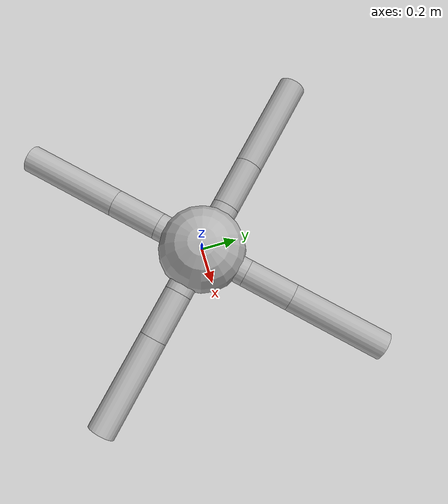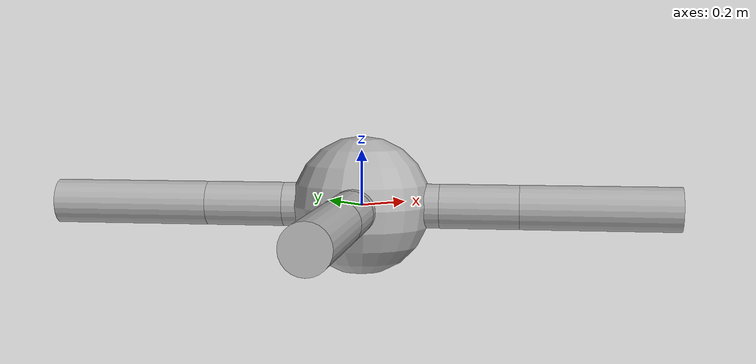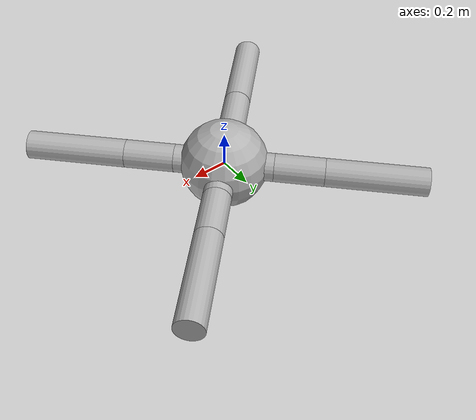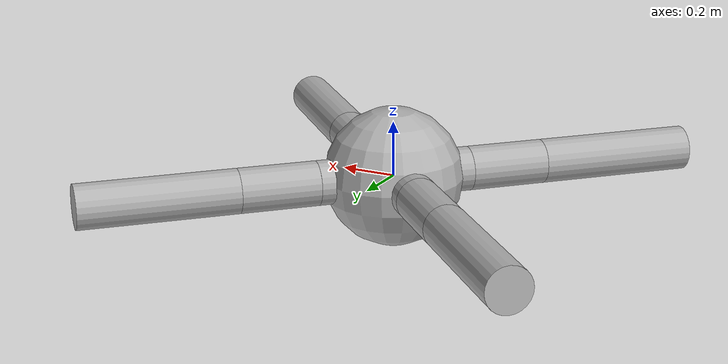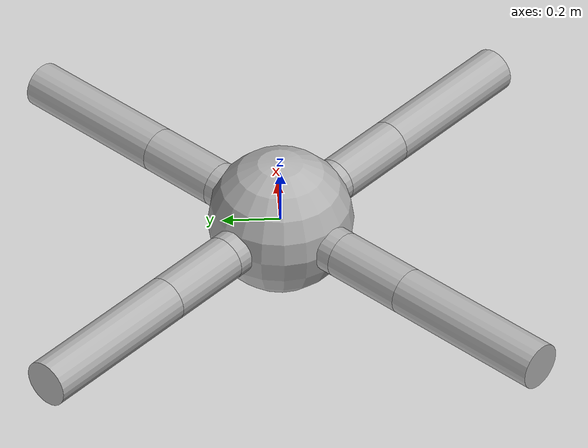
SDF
<?xml version="1.0"?>
<sdf version='1.11'>
  <model name='ant'>
    <link name='torso'>
      <inertial>
        <pose>0 2.294416879285882e-18 0 0 0 0</pose>
        <mass>96.776050999999967</mass>
        <inertia>
          <ixx>2.6675520009999998</ixx>
          <ixy>0</ixy>
          <ixz>0</ixz>
          <iyy>2.6675520009999998</iyy>
          <iyz>0</iyz>
          <izz>3.4315340010000011</izz>
        </inertia>
      </inertial>
      <collision name='torso_collision'>
        <pose>0 0 0 0 0 0</pose>
        <geometry>
          <sphere>
            <radius>0.25</radius>
          </sphere>
        </geometry>
      </collision>
      <visual name='torso_visual'>
        <pose>0 0 0 0 0 0</pose>
        <geometry>
          <sphere>
            <radius>0.25</radius>
          </sphere>
        </geometry>
              <material>
          <ambient>0.5 0.5 0.5 1</ambient>
          <diffuse>0.7 0.7 0.7 1</diffuse>
          <specular>0.1 0.1 0.1 1</specular>
        </material>
      </visual>
      <collision name='torso_fixed_joint_lump__back_leg_collision_1'>
        <pose>-0.10000000000000001 -0.10000000000000001 0 1.5707999999999998 -0.7854000000000001 -0.78540000000000021</pose>
        <geometry>
          <cylinder>
            <length>0.28283999999999998</length>
            <radius>0.080000000000000002</radius>
          </cylinder>
        </geometry>
      </collision>
      <visual name='torso_fixed_joint_lump__back_leg_1_visual'>
        <pose>-0.10000000000000001 -0.10000000000000001 0 1.5707999999999998 -0.7854000000000001 -0.78540000000000021</pose>
        <geometry>
          <cylinder>
            <length>0.28283999999999998</length>
            <radius>0.080000000000000002</radius>
          </cylinder>
        </geometry>
              <material>
          <ambient>0.5 0.5 0.5 1</ambient>
          <diffuse>0.7 0.7 0.7 1</diffuse>
          <specular>0.1 0.1 0.1 1</specular>
        </material>
      </visual>
      <collision name='torso_fixed_joint_lump__right_back_leg_collision_2'>
        <pose>0.10000000000000001 -0.10000000000000001 0 1.5707999999999998 0.7854000000000001 0.78540000000000021</pose>
        <geometry>
          <cylinder>
            <length>0.28283999999999998</length>
            <radius>0.080000000000000002</radius>
          </cylinder>
        </geometry>
      </collision>
      <visual name='torso_fixed_joint_lump__right_back_leg_2_visual'>
        <pose>0.10000000000000001 -0.10000000000000001 0 1.5707999999999998 0.7854000000000001 0.78540000000000021</pose>
        <geometry>
          <cylinder>
            <length>0.28283999999999998</length>
            <radius>0.080000000000000002</radius>
          </cylinder>
        </geometry>
              <material>
          <ambient>0.5 0.5 0.5 1</ambient>
          <diffuse>0.7 0.7 0.7 1</diffuse>
          <specular>0.1 0.1 0.1 1</specular>
        </material>
      </visual>
      <collision name='torso_fixed_joint_lump__front_left_leg_collision_3'>
        <pose>0.10000000000000001 0.10000000000000001 0 -1.5707999999999998 0.7854000000000001 -0.78540000000000021</pose>
        <geometry>
          <cylinder>
            <length>0.28283999999999998</length>
            <radius>0.080000000000000002</radius>
          </cylinder>
        </geometry>
      </collision>
      <visual name='torso_fixed_joint_lump__front_left_leg_3_visual'>
        <pose>0.10000000000000001 0.10000000000000001 0 -1.5707999999999998 0.7854000000000001 -0.78540000000000021</pose>
        <geometry>
          <cylinder>
            <length>0.28283999999999998</length>
            <radius>0.080000000000000002</radius>
          </cylinder>
        </geometry>
              <material>
          <ambient>0.5 0.5 0.5 1</ambient>
          <diffuse>0.7 0.7 0.7 1</diffuse>
          <specular>0.1 0.1 0.1 1</specular>
        </material>
      </visual>
      <collision name='torso_fixed_joint_lump__front_right_leg_collision_4'>
        <pose>-0.10000000000000001 0.10000000000000001 0 -1.5707999999999998 -0.7854000000000001 0.78540000000000021</pose>
        <geometry>
          <cylinder>
            <length>0.28283999999999998</length>
            <radius>0.080000000000000002</radius>
          </cylinder>
        </geometry>
      </collision>
      <visual name='torso_fixed_joint_lump__front_right_leg_4_visual'>
        <pose>-0.10000000000000001 0.10000000000000001 0 -1.5707999999999998 -0.7854000000000001 0.78540000000000021</pose>
        <geometry>
          <cylinder>
            <length>0.28283999999999998</length>
            <radius>0.080000000000000002</radius>
          </cylinder>
        </geometry>
              <material>
          <ambient>0.5 0.5 0.5 1</ambient>
          <diffuse>0.7 0.7 0.7 1</diffuse>
          <specular>0.1 0.1 0.1 1</specular>
        </material>
      </visual>
    </link>
    <joint name='hip_3' type='revolute'>
      <pose relative_to='torso'>-0.20000000000000001 -0.20000000000000001 0 0 0 0</pose>
      <parent>torso</parent>
      <child>link1_13</child>
      <axis>
        <xyz>0 0 1</xyz>
        <limit>
          <lower>-0.52359999999999995</lower>
          <upper>0.52359999999999995</upper>
          <effort>0</effort>
          <velocity>0</velocity>
        </limit>
        <dynamics>
          <damping>1</damping>
          <friction>0.0001</friction>
          <spring_reference>0</spring_reference>
          <spring_stiffness>0</spring_stiffness>
        </dynamics>
      </axis>
    </joint>
    <link name='link1_13'>
      <pose relative_to='hip_3'>0 0 0 0 0 0</pose>
      <inertial>
        <pose>-0.099999987231137247 -0.099999987231137247 0 0 0 0</pose>
        <mass>7.8315510000000002</mass>
        <inertia>
          <ixx>0.17951001099999869</ixx>
          <ixy>-9.9999987041021754e-09</ixy>
          <ixz>0</ixz>
          <iyy>0.17951001099999869</iyy>
          <iyz>0</iyz>
          <izz>0.29219002099999752</izz>
        </inertia>
      </inertial>
      <collision name='link1_13_fixed_joint_lump__aux_3_collision'>
        <pose>-0.10000000000000001 -0.10000000000000001 0 1.5707999999999998 -0.7854000000000001 -0.78540000000000021</pose>
        <geometry>
          <cylinder>
            <length>0.28283999999999998</length>
            <radius>0.080000000000000002</radius>
          </cylinder>
        </geometry>
      </collision>
      <visual name='link1_13_fixed_joint_lump__aux_3_visual'>
        <pose>-0.10000000000000001 -0.10000000000000001 0 1.5707999999999998 -0.7854000000000001 -0.78540000000000021</pose>
        <geometry>
          <cylinder>
            <length>0.28283999999999998</length>
            <radius>0.080000000000000002</radius>
          </cylinder>
        </geometry>
              <material>
          <ambient>0.5 0.5 0.5 1</ambient>
          <diffuse>0.7 0.7 0.7 1</diffuse>
          <specular>0.1 0.1 0.1 1</specular>
        </material>
      </visual>
    </link>
    <joint name='ankle_3' type='revolute'>
      <pose relative_to='link1_13'>-0.20000000000000001 -0.20000000000000001 0 0 0 0</pose>
      <parent>link1_13</parent>
      <child>link1_15</child>
      <axis>
        <xyz>-1 1 0</xyz>
        <limit>
          <lower>-1.22173</lower>
          <upper>-0.52359999999999995</upper>
          <effort>0</effort>
          <velocity>0</velocity>
        </limit>
        <dynamics>
          <damping>1</damping>
          <friction>0.0001</friction>
          <spring_reference>0</spring_reference>
          <spring_stiffness>0</spring_stiffness>
        </dynamics>
      </axis>
    </joint>
    <link name='link1_15'>
      <pose relative_to='ankle_3'>0 0 0 0 0 0</pose>
      <inertial>
        <pose>-0.19999998520539461 -0.19999998520539461 0 0 0 0</pose>
        <mass>13.518440999999999</mass>
        <inertia>
          <ixx>0.5681300409999972</ixx>
          <ixy>-3.9999997092365902e-08</ixy>
          <ixz>0</ixz>
          <iyy>0.5681300409999972</iyy>
          <iyz>0</iyz>
          <izz>1.020900080999994</izz>
        </inertia>
      </inertial>
      <collision name='link1_15_fixed_joint_lump__link1_14_collision'>
        <pose>-0.20000000000000001 -0.20000000000000001 0 1.5707999999999998 -0.7854000000000001 -0.78540000000000021</pose>
        <geometry>
          <cylinder>
            <length>0.56569000000000003</length>
            <radius>0.080000000000000002</radius>
          </cylinder>
        </geometry>
      </collision>
      <visual name='link1_15_fixed_joint_lump__link1_14_visual'>
        <pose>-0.20000000000000001 -0.20000000000000001 0 1.5707999999999998 -0.7854000000000001 -0.78540000000000021</pose>
        <geometry>
          <cylinder>
            <length>0.56569000000000003</length>
            <radius>0.080000000000000002</radius>
          </cylinder>
        </geometry>
              <material>
          <ambient>0.5 0.5 0.5 1</ambient>
          <diffuse>0.7 0.7 0.7 1</diffuse>
          <specular>0.1 0.1 0.1 1</specular>
        </material>
      </visual>
    </link>
    <joint name='hip_4' type='revolute'>
      <pose relative_to='torso'>0.20000000000000001 -0.20000000000000001 0 0 0 0</pose>
      <parent>torso</parent>
      <child>link1_18</child>
      <axis>
        <xyz>0 0 1</xyz>
        <limit>
          <lower>-0.52359999999999995</lower>
          <upper>0.52359999999999995</upper>
          <effort>0</effort>
          <velocity>0</velocity>
        </limit>
        <dynamics>
          <damping>1</damping>
          <friction>0.0001</friction>
          <spring_reference>0</spring_reference>
          <spring_stiffness>0</spring_stiffness>
        </dynamics>
      </axis>
    </joint>
    <link name='link1_18'>
      <pose relative_to='hip_4'>0 0 0 0 0 0</pose>
      <inertial>
        <pose>0.099999987231137247 -0.099999987231137247 0 0 0 0</pose>
        <mass>7.8315510000000002</mass>
        <inertia>
          <ixx>0.17951001099999869</ixx>
          <ixy>9.9999987041021754e-09</ixy>
          <ixz>0</ixz>
          <iyy>0.17951001099999869</iyy>
          <iyz>0</iyz>
          <izz>0.29219002099999752</izz>
        </inertia>
      </inertial>
      <collision name='link1_18_fixed_joint_lump__aux_4_collision'>
        <pose>0.10000000000000001 -0.10000000000000001 0 1.5707999999999998 0.7854000000000001 0.78540000000000021</pose>
        <geometry>
          <cylinder>
            <length>0.28283999999999998</length>
            <radius>0.080000000000000002</radius>
          </cylinder>
        </geometry>
      </collision>
      <visual name='link1_18_fixed_joint_lump__aux_4_visual'>
        <pose>0.10000000000000001 -0.10000000000000001 0 1.5707999999999998 0.7854000000000001 0.78540000000000021</pose>
        <geometry>
          <cylinder>
            <length>0.28283999999999998</length>
            <radius>0.080000000000000002</radius>
          </cylinder>
        </geometry>
              <material>
          <ambient>0.5 0.5 0.5 1</ambient>
          <diffuse>0.7 0.7 0.7 1</diffuse>
          <specular>0.1 0.1 0.1 1</specular>
        </material>
      </visual>
    </link>
    <joint name='ankle_4' type='revolute'>
      <pose relative_to='link1_18'>0.20000000000000001 -0.20000000000000001 0 0 0 0</pose>
      <parent>link1_18</parent>
      <child>link1_20</child>
      <axis>
        <xyz>1 1 0</xyz>
        <limit>
          <lower>0.52359999999999995</lower>
          <upper>1.22173</upper>
          <effort>0</effort>
          <velocity>0</velocity>
        </limit>
        <dynamics>
          <damping>1</damping>
          <friction>0.0001</friction>
          <spring_reference>0</spring_reference>
          <spring_stiffness>0</spring_stiffness>
        </dynamics>
      </axis>
    </joint>
    <link name='link1_20'>
      <pose relative_to='ankle_4'>0 0 0 0 0 0</pose>
      <inertial>
        <pose>0.19999998520539461 -0.19999998520539461 0 0 0 0</pose>
        <mass>13.518440999999999</mass>
        <inertia>
          <ixx>0.5681300409999972</ixx>
          <ixy>3.9999997092365902e-08</ixy>
          <ixz>0</ixz>
          <iyy>0.5681300409999972</iyy>
          <iyz>0</iyz>
          <izz>1.020900080999994</izz>
        </inertia>
      </inertial>
      <collision name='link1_20_fixed_joint_lump__link1_19_collision'>
        <pose>0.20000000000000001 -0.20000000000000001 0 1.5707999999999998 0.7854000000000001 0.78540000000000021</pose>
        <geometry>
          <cylinder>
            <length>0.56569000000000003</length>
            <radius>0.080000000000000002</radius>
          </cylinder>
        </geometry>
      </collision>
      <visual name='link1_20_fixed_joint_lump__link1_19_visual'>
        <pose>0.20000000000000001 -0.20000000000000001 0 1.5707999999999998 0.7854000000000001 0.78540000000000021</pose>
        <geometry>
          <cylinder>
            <length>0.56569000000000003</length>
            <radius>0.080000000000000002</radius>
          </cylinder>
        </geometry>
              <material>
          <ambient>0.5 0.5 0.5 1</ambient>
          <diffuse>0.7 0.7 0.7 1</diffuse>
          <specular>0.1 0.1 0.1 1</specular>
        </material>
      </visual>
    </link>
    <joint name='hip_1' type='revolute'>
      <pose relative_to='torso'>0.20000000000000001 0.20000000000000001 0 0 0 0</pose>
      <parent>torso</parent>
      <child>link1_3</child>
      <axis>
        <xyz>0 0 1</xyz>
        <limit>
          <lower>-0.52359999999999995</lower>
          <upper>0.52359999999999995</upper>
          <effort>0</effort>
          <velocity>0</velocity>
        </limit>
        <dynamics>
          <damping>1</damping>
          <friction>0.0001</friction>
          <spring_reference>0</spring_reference>
          <spring_stiffness>0</spring_stiffness>
        </dynamics>
      </axis>
    </joint>
    <link name='link1_3'>
      <pose relative_to='hip_1'>0 0 0 0 0 0</pose>
      <inertial>
        <pose>0.099999987231137247 0.099999987231137247 0 0 0 0</pose>
        <mass>7.8315510000000002</mass>
        <inertia>
          <ixx>0.17951001099999869</ixx>
          <ixy>-9.9999987041021754e-09</ixy>
          <ixz>0</ixz>
          <iyy>0.17951001099999869</iyy>
          <iyz>0</iyz>
          <izz>0.29219002099999752</izz>
        </inertia>
      </inertial>
      <collision name='link1_3_fixed_joint_lump__aux_1_collision'>
        <pose>0.10000000000000001 0.10000000000000001 0 -1.5707999999999998 0.7854000000000001 -0.78540000000000021</pose>
        <geometry>
          <cylinder>
            <length>0.28283999999999998</length>
            <radius>0.080000000000000002</radius>
          </cylinder>
        </geometry>
      </collision>
      <visual name='link1_3_fixed_joint_lump__aux_1_visual'>
        <pose>0.10000000000000001 0.10000000000000001 0 -1.5707999999999998 0.7854000000000001 -0.78540000000000021</pose>
        <geometry>
          <cylinder>
            <length>0.28283999999999998</length>
            <radius>0.080000000000000002</radius>
          </cylinder>
        </geometry>
              <material>
          <ambient>0.5 0.5 0.5 1</ambient>
          <diffuse>0.7 0.7 0.7 1</diffuse>
          <specular>0.1 0.1 0.1 1</specular>
        </material>
      </visual>
    </link>
    <joint name='ankle_1' type='revolute'>
      <pose relative_to='link1_3'>0.20000000000000001 0.20000000000000001 0 0 0 0</pose>
      <parent>link1_3</parent>
      <child>link1_5</child>
      <axis>
        <xyz>-1 1 0</xyz>
        <limit>
          <lower>0.52359999999999995</lower>
          <upper>1.22173</upper>
          <effort>0</effort>
          <velocity>0</velocity>
        </limit>
        <dynamics>
          <damping>1</damping>
          <friction>0.0001</friction>
          <spring_reference>0</spring_reference>
          <spring_stiffness>0</spring_stiffness>
        </dynamics>
      </axis>
    </joint>
    <link name='link1_5'>
      <pose relative_to='ankle_1'>0 0 0 0 0 0</pose>
      <inertial>
        <pose>0.19999998520539461 0.19999998520539461 0 0 0 0</pose>
        <mass>13.518440999999999</mass>
        <inertia>
          <ixx>0.5681300409999972</ixx>
          <ixy>-3.9999997092365902e-08</ixy>
          <ixz>0</ixz>
          <iyy>0.5681300409999972</iyy>
          <iyz>0</iyz>
          <izz>1.020900080999994</izz>
        </inertia>
      </inertial>
      <collision name='link1_5_fixed_joint_lump__link1_4_collision'>
        <pose>0.20000000000000001 0.20000000000000001 0 -1.5707999999999998 0.7854000000000001 -0.78540000000000021</pose>
        <geometry>
          <cylinder>
            <length>0.56569000000000003</length>
            <radius>0.080000000000000002</radius>
          </cylinder>
        </geometry>
      </collision>
      <visual name='link1_5_fixed_joint_lump__link1_4_visual'>
        <pose>0.20000000000000001 0.20000000000000001 0 -1.5707999999999998 0.7854000000000001 -0.78540000000000021</pose>
        <geometry>
          <cylinder>
            <length>0.56569000000000003</length>
            <radius>0.080000000000000002</radius>
          </cylinder>
        </geometry>
              <material>
          <ambient>0.5 0.5 0.5 1</ambient>
          <diffuse>0.7 0.7 0.7 1</diffuse>
          <specular>0.1 0.1 0.1 1</specular>
        </material>
      </visual>
    </link>
    <joint name='hip_2' type='revolute'>
      <pose relative_to='torso'>-0.20000000000000001 0.20000000000000001 0 0 0 0</pose>
      <parent>torso</parent>
      <child>link1_8</child>
      <axis>
        <xyz>0 0 1</xyz>
        <limit>
          <lower>-0.52359999999999995</lower>
          <upper>0.52359999999999995</upper>
          <effort>0</effort>
          <velocity>0</velocity>
        </limit>
        <dynamics>
          <damping>1</damping>
          <friction>0.0001</friction>
          <spring_reference>0</spring_reference>
          <spring_stiffness>0</spring_stiffness>
        </dynamics>
      </axis>
    </joint>
    <link name='link1_8'>
      <pose relative_to='hip_2'>0 0 0 0 0 0</pose>
      <inertial>
        <pose>-0.099999987231137247 0.099999987231137247 0 0 0 0</pose>
        <mass>7.8315510000000002</mass>
        <inertia>
          <ixx>0.17951001099999869</ixx>
          <ixy>9.9999987041021754e-09</ixy>
          <ixz>0</ixz>
          <iyy>0.17951001099999869</iyy>
          <iyz>0</iyz>
          <izz>0.29219002099999752</izz>
        </inertia>
      </inertial>
      <collision name='link1_8_fixed_joint_lump__aux_2_collision'>
        <pose>-0.10000000000000001 0.10000000000000001 0 -1.5707999999999998 -0.7854000000000001 0.78540000000000021</pose>
        <geometry>
          <cylinder>
            <length>0.28283999999999998</length>
            <radius>0.080000000000000002</radius>
          </cylinder>
        </geometry>
      </collision>
      <visual name='link1_8_fixed_joint_lump__aux_2_visual'>
        <pose>-0.10000000000000001 0.10000000000000001 0 -1.5707999999999998 -0.7854000000000001 0.78540000000000021</pose>
        <geometry>
          <cylinder>
            <length>0.28283999999999998</length>
            <radius>0.080000000000000002</radius>
          </cylinder>
        </geometry>
              <material>
          <ambient>0.5 0.5 0.5 1</ambient>
          <diffuse>0.7 0.7 0.7 1</diffuse>
          <specular>0.1 0.1 0.1 1</specular>
        </material>
      </visual>
    </link>
    <joint name='ankle_2' type='revolute'>
      <pose relative_to='link1_8'>-0.20000000000000001 0.20000000000000001 0 0 0 0</pose>
      <parent>link1_8</parent>
      <child>link1_10</child>
      <axis>
        <xyz>1 1 0</xyz>
        <limit>
          <lower>-1.22173</lower>
          <upper>-0.52359999999999995</upper>
          <effort>0</effort>
          <velocity>0</velocity>
        </limit>
        <dynamics>
          <damping>1</damping>
          <friction>0.0001</friction>
          <spring_reference>0</spring_reference>
          <spring_stiffness>0</spring_stiffness>
        </dynamics>
      </axis>
    </joint>
    <link name='link1_10'>
      <pose relative_to='ankle_2'>0 0 0 0 0 0</pose>
      <inertial>
        <pose>-0.19999998520539461 0.19999998520539461 0 0 0 0</pose>
        <mass>13.518440999999999</mass>
        <inertia>
          <ixx>0.5681300409999972</ixx>
          <ixy>3.9999997092365902e-08</ixy>
          <ixz>0</ixz>
          <iyy>0.5681300409999972</iyy>
          <iyz>0</iyz>
          <izz>1.020900080999994</izz>
        </inertia>
      </inertial>
      <collision name='link1_10_fixed_joint_lump__link1_9_collision'>
        <pose>-0.20000000000000001 0.20000000000000001 0 -1.5707999999999998 -0.7854000000000001 0.78540000000000021</pose>
        <geometry>
          <cylinder>
            <length>0.56569000000000003</length>
            <radius>0.080000000000000002</radius>
          </cylinder>
        </geometry>
      </collision>
      <visual name='link1_10_fixed_joint_lump__link1_9_visual'>
        <pose>-0.20000000000000001 0.20000000000000001 0 -1.5707999999999998 -0.7854000000000001 0.78540000000000021</pose>
        <geometry>
          <cylinder>
            <length>0.56569000000000003</length>
            <radius>0.080000000000000002</radius>
          </cylinder>
        </geometry>
              <material>
          <ambient>0.5 0.5 0.5 1</ambient>
          <diffuse>0.7 0.7 0.7 1</diffuse>
          <specular>0.1 0.1 0.1 1</specular>
        </material>
      </visual>
    </link>

</model>
</sdf>
